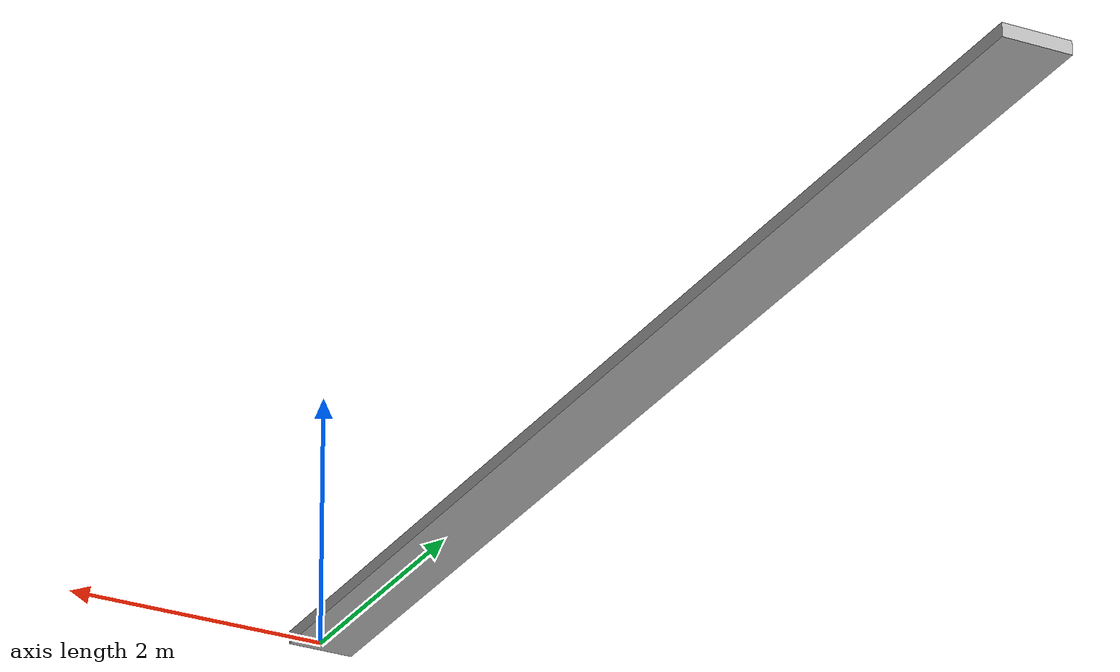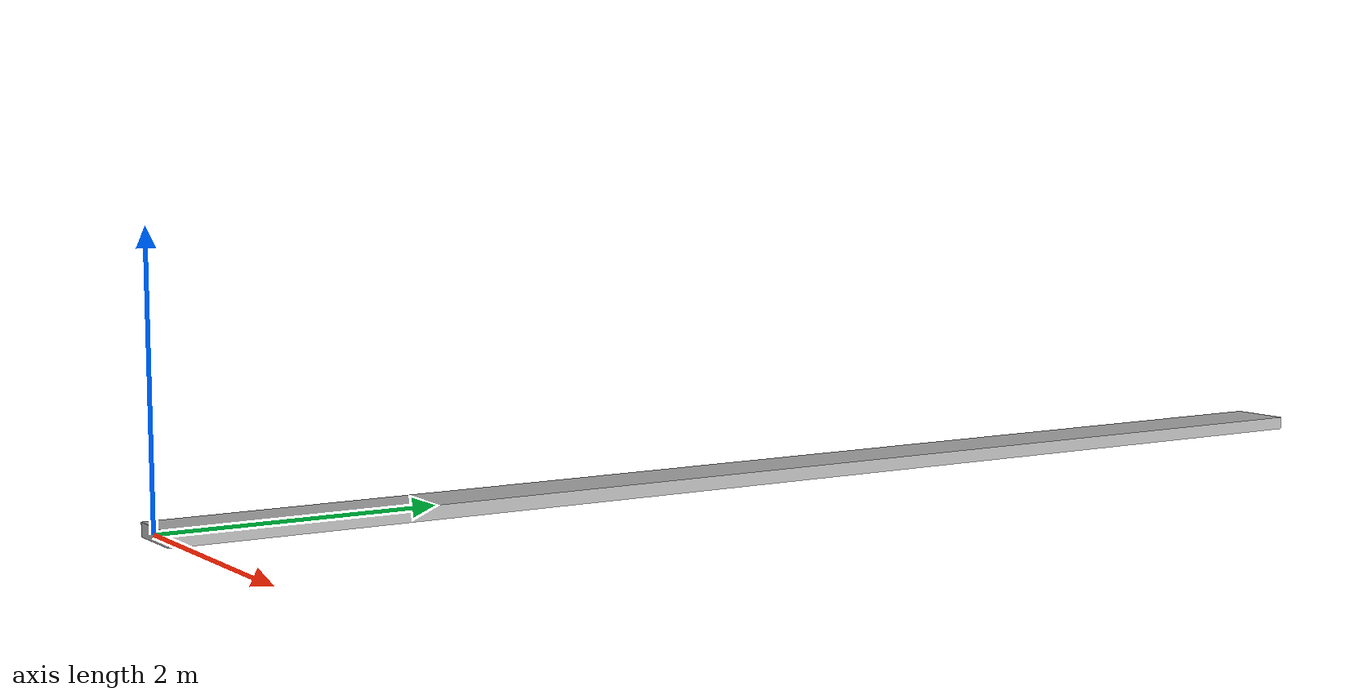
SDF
<?xml version="1.0" ?>
<sdf version="1.6">
   <model name="conveyor_belt">

     <model name="conveyor_belt_1">
       <static>true</static>
       <pose>0 0 0 0 0 -1.57079</pose>
       <link name="belt">
         <pose>-5 0 0 0 0 0</pose>
       </link>
     </model>

     <model name="conveyor_belt_2">
       <static>false</static>
       <pose>0 0 0 0 0 -1.57079</pose>
       <link name="belt">
         <pose>-5 0 0 0 0 0</pose>
         <inertial>
           <inertia>
             <ixx>3.8185</ixx>
             <ixy>0</ixy>
             <ixz>0</ixz>
             <iyy>1781.5</iyy>
             <iyz>0</iyz>
             <izz>1784.72</izz>
           </inertia>
           <mass>100</mass>
         </inertial>
         <!--Uncomment for debugging -->

         <visual name="belt_visual">
           <geometry>
             <box>
               <size>10.00 0.50 0.10</size>
             </box>
           </geometry>
         </visual>

         <collision name="belt_collision">
           <geometry>
             <box>
               <size>10.00 0.50 0.10</size>
             </box>
           </geometry>
           <surface>
             <friction>
               <ode>
                 <mu>1.0</mu>
                 <mu2>1.0</mu2>
               </ode>
               <torsional>
                 <coefficient>1000.0</coefficient>
                 <patch_radius>0.1</patch_radius>
               </torsional>
             </friction>
           </surface>
         </collision>
       </link>
     </model>

     <joint name="belt_joint" type="prismatic">
       <parent>conveyor_belt_1::belt</parent>
       <child>conveyor_belt_2::belt</child>
       <axis>
         <xyz>1 0 0</xyz>
         <limit>
           <lower>0</lower>
           <upper>1.0</upper>
         </limit>
       </axis>
     </joint>

     <plugin name="conveyor_belt_plugin" filename="libROSConveyorBeltPlugin.so">
       <robot_namespace>/ur5_t2_4230</robot_namespace>
       <link>conveyor_belt::conveyor_belt_2::belt</link>
       <power>100.0</power>
     </plugin>
   </model>
</sdf>
